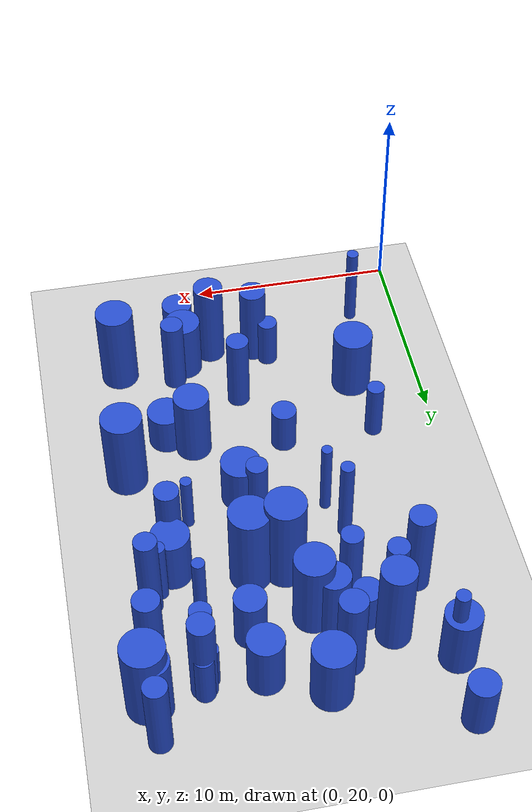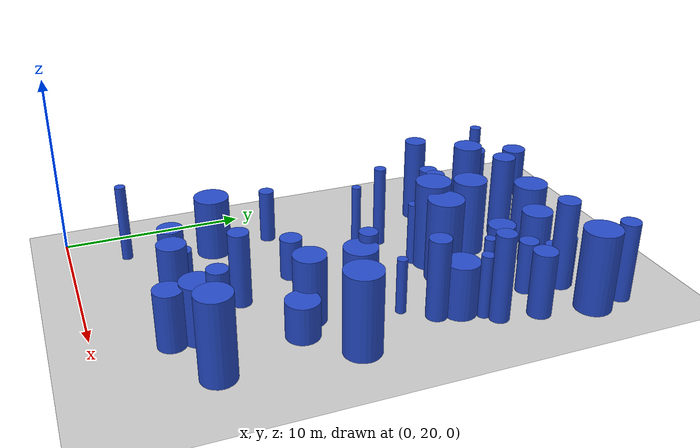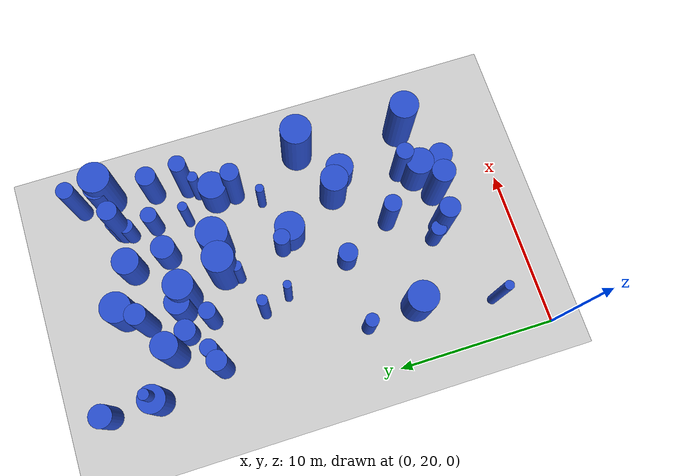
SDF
<sdf version="1.6">
 <world name="default">
  <model name="ground_plane">
   <static>1</static>
   <link name="link">
    <collision name="collision">
     <geometry><plane><normal>0 0 1</normal><size>100 100</size></plane></geometry>
     <surface><friction><ode><mu>100</mu><mu2>50</mu2></ode></friction></surface>
    </collision>
    <visual name="visual">
     <cast_shadows>0</cast_shadows>
     <geometry><plane><normal>0 0 1</normal><size>100 100</size></plane></geometry>
     <material>
      <script><uri>file://media/materials/scripts/gazebo.material</uri><name>Gazebo/Grey</name></script>
     </material>
    </visual>
   </link>
  </model>
  <model name="2">
   <static>0</static>
   <link name="link">
    <inertial>
     <mass>2</mass>
     <inertia><ixx>1.22837</ixx><ixy>0</ixy><ixz>0</ixz><iyy>1.22837</iyy><iyz>0</iyz><izz>0.232608</izz></inertia>
    </inertial>
    <collision name="collision">
     <geometry><cylinder><length>2.5831</length><radius>0.482294</radius></cylinder></geometry>
     <surface><contact><collide_without_contact>1</collide_without_contact></contact></surface>
    </collision>
    <visual name="visual">
     <geometry><cylinder><length>2.5831</length><radius>0.482294</radius></cylinder></geometry>
     <material>
      <script><uri>file://media/materials/scripts/gazebo.material</uri><name>Gazebo/Blue</name></script>
     </material>
    </visual>
    <gravity>0</gravity>
   </link>
   <pose>7.27465 25.3161 1.29155 0 -0 0</pose>
  </model>
  <model name="3">
   <static>0</static>
   <link name="link">
    <inertial>
     <mass>2</mass>
     <inertia><ixx>2.57983</ixx><ixy>0</ixy><ixz>0</ixz><iyy>2.57983</iyy><iyz>0</iyz><izz>0.566458</izz></inertia>
    </inertial>
    <collision name="collision">
     <geometry><cylinder><length>3.71209</length><radius>0.752634</radius></cylinder></geometry>
     <surface><contact><collide_without_contact>1</collide_without_contact></contact></surface>
    </collision>
    <visual name="visual">
     <geometry><cylinder><length>3.71209</length><radius>0.752634</radius></cylinder></geometry>
     <material>
      <script><uri>file://media/materials/scripts/gazebo.material</uri><name>Gazebo/Blue</name></script>
     </material>
    </visual>
    <gravity>0</gravity>
   </link>
   <pose>15.6778 44.6487 1.85604 0 -0 0</pose>
  </model>
  <model name="4">
   <static>0</static>
   <link name="link">
    <inertial>
     <mass>2</mass>
     <inertia>
      <ixx>2.76351</ixx>
      <ixy>0</ixy>
      <ixz>0</ixz>
      <iyy>2.76351</iyy>
      <iyz>0</iyz>
      <izz>0.0663908</izz>
     </inertia>
    </inertial>
    <collision name="collision">
     <geometry><cylinder><length>4.04745</length><radius>0.257664</radius></cylinder></geometry>
     <surface><contact><collide_without_contact>1</collide_without_contact></contact></surface>
    </collision>
    <visual name="visual">
     <geometry><cylinder><length>4.04745</length><radius>0.257664</radius></cylinder></geometry>
     <material>
      <script><uri>file://media/materials/scripts/gazebo.material</uri><name>Gazebo/Blue</name></script>
     </material>
    </visual>
    <gravity>0</gravity>
   </link>
   <pose>6.37285 35.2988 2.02373 0 -0 0</pose>
  </model>
  <model name="7">
   <static>0</static>
   <link name="link">
    <inertial>
     <mass>2</mass>
     <inertia><ixx>1.62705</ixx><ixy>0</ixy><ixz>0</ixz><iyy>1.62705</iyy><iyz>0</iyz><izz>0.555531</izz></inertia>
    </inertial>
    <collision name="collision">
     <geometry><cylinder><length>2.84529</length><radius>0.745339</radius></cylinder></geometry>
     <surface><contact><collide_without_contact>1</collide_without_contact></contact></surface>
    </collision>
    <visual name="visual">
     <geometry><cylinder><length>2.84529</length><radius>0.745339</radius></cylinder></geometry>
     <material>
      <script><uri>file://media/materials/scripts/gazebo.material</uri><name>Gazebo/Blue</name></script>
     </material>
    </visual>
    <gravity>0</gravity>
   </link>
   <pose>11.1182 41.7888 1.42265 0 -0 0</pose>
  </model>
  <model name="8">
   <static>0</static>
   <link name="link">
    <inertial>
     <mass>2</mass>
     <inertia><ixx>3.2449</ixx><ixy>0</ixy><ixz>0</ixz><iyy>3.2449</iyy><iyz>0</iyz><izz>0.0853454</izz></inertia>
    </inertial>
    <collision name="collision">
     <geometry><cylinder><length>4.3833</length><radius>0.292139</radius></cylinder></geometry>
     <surface><contact><collide_without_contact>1</collide_without_contact></contact></surface>
    </collision>
    <visual name="visual">
     <geometry><cylinder><length>4.3833</length><radius>0.292139</radius></cylinder></geometry>
     <material>
      <script><uri>file://media/materials/scripts/gazebo.material</uri><name>Gazebo/Blue</name></script>
     </material>
    </visual>
    <gravity>0</gravity>
   </link>
   <pose>2.40092 23.0819 2.19165 0 -0 0</pose>
  </model>
  <model name="13">
   <static>0</static>
   <link name="link">
    <inertial>
     <mass>2</mass>
     <inertia><ixx>4.00177</ixx><ixy>0</ixy><ixz>0</ixz><iyy>4.00177</iyy><iyz>0</iyz><izz>0.275408</izz></inertia>
    </inertial>
    <collision name="collision">
     <geometry><cylinder><length>4.81501</length><radius>0.524793</radius></cylinder></geometry>
     <surface><contact><collide_without_contact>1</collide_without_contact></contact></surface>
    </collision>
    <visual name="visual">
     <geometry><cylinder><length>4.81501</length><radius>0.524793</radius></cylinder></geometry>
     <material>
      <script><uri>file://media/materials/scripts/gazebo.material</uri><name>Gazebo/Blue</name></script>
     </material>
    </visual>
    <gravity>0</gravity>
   </link>
   <pose>15.2098 39.4486 2.40751 0 -0 0</pose>
  </model>
  <model name="18">
   <static>0</static>
   <link name="link">
    <inertial>
     <mass>2</mass>
     <inertia><ixx>1.88839</ixx><ixy>0</ixy><ixz>0</ixz><iyy>1.88839</iyy><iyz>0</iyz><izz>0.554769</izz></inertia>
    </inertial>
    <collision name="collision">
     <geometry><cylinder><length>3.10903</length><radius>0.744828</radius></cylinder></geometry>
     <surface><contact><collide_without_contact>1</collide_without_contact></contact></surface>
    </collision>
    <visual name="visual">
     <geometry><cylinder><length>3.10903</length><radius>0.744828</radius></cylinder></geometry>
     <material>
      <script><uri>file://media/materials/scripts/gazebo.material</uri><name>Gazebo/Blue</name></script>
     </material>
    </visual>
    <gravity>0</gravity>
   </link>
   <pose>11.6379 23.7222 1.55451 0 -0 0</pose>
  </model>
  <model name="20">
   <static>0</static>
   <link name="link">
    <inertial>
     <mass>2</mass>
     <inertia><ixx>1.55555</ixx><ixy>0</ixy><ixz>0</ixz><iyy>1.55555</iyy><iyz>0</iyz><izz>0.262073</izz></inertia>
    </inertial>
    <collision name="collision">
     <geometry><cylinder><length>2.92354</length><radius>0.51193</radius></cylinder></geometry>
     <surface><contact><collide_without_contact>1</collide_without_contact></contact></surface>
    </collision>
    <visual name="visual">
     <geometry><cylinder><length>2.92354</length><radius>0.51193</radius></cylinder></geometry>
     <material>
      <script><uri>file://media/materials/scripts/gazebo.material</uri><name>Gazebo/Blue</name></script>
     </material>
    </visual>
    <gravity>0</gravity>
   </link>
   <pose>13.3245 42.0815 1.46177 0 -0 0</pose>
  </model>
  <model name="25">
   <static>0</static>
   <link name="link">
    <inertial>
     <mass>2</mass>
     <inertia><ixx>3.26068</ixx><ixy>0</ixy><ixz>0</ixz><iyy>3.26068</iyy><iyz>0</iyz><izz>0.425175</izz></inertia>
    </inertial>
    <collision name="collision">
     <geometry><cylinder><length>4.27651</length><radius>0.652054</radius></cylinder></geometry>
     <surface><contact><collide_without_contact>1</collide_without_contact></contact></surface>
    </collision>
    <visual name="visual">
     <geometry><cylinder><length>4.27651</length><radius>0.652054</radius></cylinder></geometry>
     <material>
      <script><uri>file://media/materials/scripts/gazebo.material</uri><name>Gazebo/Blue</name></script>
     </material>
    </visual>
    <gravity>0</gravity>
   </link>
   <pose>7.91158 24.6829 2.13826 0 -0 0</pose>
  </model>
  <model name="33">
   <static>0</static>
   <link name="link">
    <inertial>
     <mass>2</mass>
     <inertia><ixx>3.67446</ixx><ixy>0</ixy><ixz>0</ixz><iyy>3.67446</iyy><iyz>0</iyz><izz>0.109586</izz></inertia>
    </inertial>
    <collision name="collision">
     <geometry><cylinder><length>4.66025</length><radius>0.331037</radius></cylinder></geometry>
     <surface><contact><collide_without_contact>1</collide_without_contact></contact></surface>
    </collision>
    <visual name="visual">
     <geometry><cylinder><length>4.66025</length><radius>0.331037</radius></cylinder></geometry>
     <material>
      <script><uri>file://media/materials/scripts/gazebo.material</uri><name>Gazebo/Blue</name></script>
     </material>
    </visual>
    <gravity>0</gravity>
   </link>
   <pose>5.79937 36.9559 2.33013 0 -0 0</pose>
  </model>
  <model name="45">
   <static>0</static>
   <link name="link">
    <inertial>
     <mass>2</mass>
     <inertia><ixx>4.31175</ixx><ixy>0</ixy><ixz>0</ixz><iyy>4.31175</iyy><iyz>0</iyz><izz>0.358965</izz></inertia>
    </inertial>
    <collision name="collision">
     <geometry><cylinder><length>4.97932</length><radius>0.599137</radius></cylinder></geometry>
     <surface><contact><collide_without_contact>1</collide_without_contact></contact></surface>
    </collision>
    <visual name="visual">
     <geometry><cylinder><length>4.97932</length><radius>0.599137</radius></cylinder></geometry>
     <material>
      <script><uri>file://media/materials/scripts/gazebo.material</uri><name>Gazebo/Blue</name></script>
     </material>
    </visual>
    <gravity>0</gravity>
   </link>
   <pose>13.5394 44.0868 2.48966 0 -0 0</pose>
  </model>
  <model name="50">
   <static>0</static>
   <link name="link">
    <inertial>
     <mass>2</mass>
     <inertia><ixx>4.08319</ixx><ixy>0</ixy><ixz>0</ixz><iyy>4.08319</iyy><iyz>0</iyz><izz>0.947286</izz></inertia>
    </inertial>
    <collision name="collision">
     <geometry><cylinder><length>4.65374</length><radius>0.973286</radius></cylinder></geometry>
     <surface><contact><collide_without_contact>1</collide_without_contact></contact></surface>
    </collision>
    <visual name="visual">
     <geometry><cylinder><length>4.65374</length><radius>0.973286</radius></cylinder></geometry>
     <material>
      <script><uri>file://media/materials/scripts/gazebo.material</uri><name>Gazebo/Blue</name></script>
     </material>
    </visual>
    <gravity>0</gravity>
   </link>
   <pose>10.5505 38.6327 2.32687 0 -0 0</pose>
  </model>
  <model name="51">
   <static>0</static>
   <link name="link">
    <inertial>
     <mass>2</mass>
     <inertia><ixx>1.96723</ixx><ixy>0</ixy><ixz>0</ixz><iyy>1.96723</iyy><iyz>0</iyz><izz>0.705018</izz></inertia>
    </inertial>
    <collision name="collision">
     <geometry><cylinder><length>3.11261</length><radius>0.839654</radius></cylinder></geometry>
     <surface><contact><collide_without_contact>1</collide_without_contact></contact></surface>
    </collision>
    <visual name="visual">
     <geometry><cylinder><length>3.11261</length><radius>0.839654</radius></cylinder></geometry>
     <material>
      <script><uri>file://media/materials/scripts/gazebo.material</uri><name>Gazebo/Blue</name></script>
     </material>
    </visual>
    <gravity>0</gravity>
   </link>
   <pose>10.8716 44.1182 1.5563 0 -0 0</pose>
  </model>
  <model name="54">
   <static>0</static>
   <link name="link">
    <inertial>
     <mass>2</mass>
     <inertia><ixx>2.11658</ixx><ixy>0</ixy><ixz>0</ixz><iyy>2.11658</iyy><iyz>0</iyz><izz>0.764272</izz></inertia>
    </inertial>
    <collision name="collision">
     <geometry><cylinder><length>3.22594</length><radius>0.874226</radius></cylinder></geometry>
     <surface><contact><collide_without_contact>1</collide_without_contact></contact></surface>
    </collision>
    <visual name="visual">
     <geometry><cylinder><length>3.22594</length><radius>0.874226</radius></cylinder></geometry>
     <material>
      <script><uri>file://media/materials/scripts/gazebo.material</uri><name>Gazebo/Blue</name></script>
     </material>
    </visual>
    <gravity>0</gravity>
   </link>
   <pose>11.5601 25.1175 1.61297 0 -0 0</pose>
  </model>
  <model name="57">
   <static>0</static>
   <link name="link">
    <inertial>
     <mass>2</mass>
     <inertia>
      <ixx>1.59473</ixx>
      <ixy>0</ixy>
      <ixz>0</ixz>
      <iyy>1.59473</iyy>
      <iyz>0</iyz>
      <izz>0.0761013</izz>
     </inertia>
    </inertial>
    <collision name="collision">
     <geometry><cylinder><length>3.05615</length><radius>0.275865</radius></cylinder></geometry>
     <surface><contact><collide_without_contact>1</collide_without_contact></contact></surface>
    </collision>
    <visual name="visual">
     <geometry><cylinder><length>3.05615</length><radius>0.275865</radius></cylinder></geometry>
     <material>
      <script><uri>file://media/materials/scripts/gazebo.material</uri><name>Gazebo/Blue</name></script>
     </material>
    </visual>
    <gravity>0</gravity>
   </link>
   <pose>12.885 35.111 1.52808 0 -0 0</pose>
  </model>
  <model name="73">
   <static>0</static>
   <link name="link">
    <inertial>
     <mass>2</mass>
     <inertia><ixx>1.07986</ixx><ixy>0</ixy><ixz>0</ixz><iyy>1.07986</iyy><iyz>0</iyz><izz>0.370104</izz></inertia>
    </inertial>
    <collision name="collision">
     <geometry><cylinder><length>2.31708</length><radius>0.608361</radius></cylinder></geometry>
     <surface><contact><collide_without_contact>1</collide_without_contact></contact></surface>
    </collision>
    <visual name="visual">
     <geometry><cylinder><length>2.31708</length><radius>0.608361</radius></cylinder></geometry>
     <material>
      <script><uri>file://media/materials/scripts/gazebo.material</uri><name>Gazebo/Blue</name></script>
     </material>
    </visual>
    <gravity>0</gravity>
   </link>
   <pose>7.54323 31.0733 1.15854 0 -0 0</pose>
  </model>
  <model name="78">
   <static>0</static>
   <link name="link">
    <inertial>
     <mass>2</mass>
     <inertia><ixx>4.09063</ixx><ixy>0</ixy><ixz>0</ixz><iyy>4.09063</iyy><iyz>0</iyz><izz>0.371531</izz></inertia>
    </inertial>
    <collision name="collision">
     <geometry><cylinder><length>4.84037</length><radius>0.609533</radius></cylinder></geometry>
     <surface><contact><collide_without_contact>1</collide_without_contact></contact></surface>
    </collision>
    <visual name="visual">
     <geometry><cylinder><length>4.84037</length><radius>0.609533</radius></cylinder></geometry>
     <material>
      <script><uri>file://media/materials/scripts/gazebo.material</uri><name>Gazebo/Blue</name></script>
     </material>
    </visual>
    <gravity>0</gravity>
   </link>
   <pose>3.26079 40.3524 2.42019 0 -0 0</pose>
  </model>
  <model name="84">
   <static>0</static>
   <link name="link">
    <inertial>
     <mass>2</mass>
     <inertia><ixx>3.5158</ixx><ixy>0</ixy><ixz>0</ixz><iyy>3.5158</iyy><iyz>0</iyz><izz>0.852529</izz></inertia>
    </inertial>
    <collision name="collision">
     <geometry><cylinder><length>4.30549</length><radius>0.923325</radius></cylinder></geometry>
     <surface><contact><collide_without_contact>1</collide_without_contact></contact></surface>
    </collision>
    <visual name="visual">
     <geometry><cylinder><length>4.30549</length><radius>0.923325</radius></cylinder></geometry>
     <material>
      <script><uri>file://media/materials/scripts/gazebo.material</uri><name>Gazebo/Blue</name></script>
     </material>
    </visual>
    <gravity>0</gravity>
   </link>
   <pose>8.22938 41.3509 2.15274 0 -0 0</pose>
  </model>
  <model name="92">
   <static>0</static>
   <link name="link">
    <inertial>
     <mass>2</mass>
     <inertia><ixx>2.42741</ixx><ixy>0</ixy><ixz>0</ixz><iyy>2.42741</iyy><iyz>0</iyz><izz>0.934347</izz></inertia>
    </inertial>
    <collision name="collision">
     <geometry><cylinder><length>3.4295</length><radius>0.966616</radius></cylinder></geometry>
     <surface><contact><collide_without_contact>1</collide_without_contact></contact></surface>
    </collision>
    <visual name="visual">
     <geometry><cylinder><length>3.4295</length><radius>0.966616</radius></cylinder></geometry>
     <material>
      <script><uri>file://media/materials/scripts/gazebo.material</uri><name>Gazebo/Blue</name></script>
     </material>
    </visual>
    <gravity>0</gravity>
   </link>
   <pose>3.42909 27.821 1.71475 0 -0 0</pose>
  </model>
  <model name="97">
   <static>0</static>
   <link name="link">
    <inertial>
     <mass>2</mass>
     <inertia><ixx>4.57511</ixx><ixy>0</ixy><ixz>0</ixz><iyy>4.57511</iyy><iyz>0</iyz><izz>0.91378</izz></inertia>
    </inertial>
    <collision name="collision">
     <geometry><cylinder><length>4.97085</length><radius>0.955918</radius></cylinder></geometry>
     <surface><contact><collide_without_contact>1</collide_without_contact></contact></surface>
    </collision>
    <visual name="visual">
     <geometry><cylinder><length>4.97085</length><radius>0.955918</radius></cylinder></geometry>
     <material>
      <script><uri>file://media/materials/scripts/gazebo.material</uri><name>Gazebo/Blue</name></script>
     </material>
    </visual>
    <gravity>0</gravity>
   </link>
   <pose>8.95716 38.6813 2.48542 0 -0 0</pose>
  </model>
  <model name="118">
   <static>0</static>
   <link name="link">
    <inertial>
     <mass>2</mass>
     <inertia><ixx>2.33748</ixx><ixy>0</ixy><ixz>0</ixz><iyy>2.33748</iyy><iyz>0</iyz><izz>0.591398</izz></inertia>
    </inertial>
    <collision name="collision">
     <geometry><cylinder><length>3.5001</length><radius>0.769024</radius></cylinder></geometry>
     <surface><contact><collide_without_contact>1</collide_without_contact></contact></surface>
    </collision>
    <visual name="visual">
     <geometry><cylinder><length>3.5001</length><radius>0.769024</radius></cylinder></geometry>
     <material>
      <script><uri>file://media/materials/scripts/gazebo.material</uri><name>Gazebo/Blue</name></script>
     </material>
    </visual>
    <gravity>0</gravity>
   </link>
   <pose>7.44101 41.7735 1.75005 0 -0 0</pose>
  </model>
  <model name="119">
   <static>0</static>
   <link name="link">
    <inertial>
     <mass>2</mass>
     <inertia>
      <ixx>1.92856</ixx>
      <ixy>0</ixy>
      <ixz>0</ixz>
      <iyy>1.92856</iyy>
      <iyz>0</iyz>
      <izz>0.0917281</izz>
     </inertia>
    </inertial>
    <collision name="collision">
     <geometry><cylinder><length>3.36098</length><radius>0.302867</radius></cylinder></geometry>
     <surface><contact><collide_without_contact>1</collide_without_contact></contact></surface>
    </collision>
    <visual name="visual">
     <geometry><cylinder><length>3.36098</length><radius>0.302867</radius></cylinder></geometry>
     <material>
      <script><uri>file://media/materials/scripts/gazebo.material</uri><name>Gazebo/Blue</name></script>
     </material>
    </visual>
    <gravity>0</gravity>
   </link>
   <pose>13.0608 39.9307 1.68049 0 -0 0</pose>
  </model>
  <model name="139">
   <static>0</static>
   <link name="link">
    <inertial>
     <mass>2</mass>
     <inertia><ixx>4.20555</ixx><ixy>0</ixy><ixz>0</ixz><iyy>4.20555</iyy><iyz>0</iyz><izz>0.653615</izz></inertia>
    </inertial>
    <collision name="collision">
     <geometry><cylinder><length>4.82415</length><radius>0.808465</radius></cylinder></geometry>
     <surface><contact><collide_without_contact>1</collide_without_contact></contact></surface>
    </collision>
    <visual name="visual">
     <geometry><cylinder><length>4.82415</length><radius>0.808465</radius></cylinder></geometry>
     <material>
      <script><uri>file://media/materials/scripts/gazebo.material</uri><name>Gazebo/Blue</name></script>
     </material>
    </visual>
    <gravity>0</gravity>
   </link>
   <pose>4.9452 42.9406 2.41208 0 -0 0</pose>
  </model>
  <model name="144">
   <static>0</static>
   <link name="link">
    <inertial>
     <mass>2</mass>
     <inertia><ixx>2.65699</ixx><ixy>0</ixy><ixz>0</ixz><iyy>2.65699</iyy><iyz>0</iyz><izz>0.740727</izz></inertia>
    </inertial>
    <collision name="collision">
     <geometry><cylinder><length>3.70402</length><radius>0.860655</radius></cylinder></geometry>
     <surface><contact><collide_without_contact>1</collide_without_contact></contact></surface>
    </collision>
    <visual name="visual">
     <geometry><cylinder><length>3.70402</length><radius>0.860655</radius></cylinder></geometry>
     <material>
      <script><uri>file://media/materials/scripts/gazebo.material</uri><name>Gazebo/Blue</name></script>
     </material>
    </visual>
    <gravity>0</gravity>
   </link>
   <pose>11.9288 30.6022 1.85201 0 -0 0</pose>
  </model>
  <model name="146">
   <static>0</static>
   <link name="link">
    <inertial>
     <mass>2</mass>
     <inertia><ixx>1.86074</ixx><ixy>0</ixy><ixz>0</ixz><iyy>1.86074</iyy><iyz>0</iyz><izz>0.802678</izz></inertia>
    </inertial>
    <collision name="collision">
     <geometry><cylinder><length>2.95913</length><radius>0.895923</radius></cylinder></geometry>
     <surface><contact><collide_without_contact>1</collide_without_contact></contact></surface>
    </collision>
    <visual name="visual">
     <geometry><cylinder><length>2.95913</length><radius>0.895923</radius></cylinder></geometry>
     <material>
      <script><uri>file://media/materials/scripts/gazebo.material</uri><name>Gazebo/Blue</name></script>
     </material>
    </visual>
    <gravity>0</gravity>
   </link>
   <pose>14.0103 37.8708 1.47956 0 -0 0</pose>
  </model>
  <model name="151">
   <static>0</static>
   <link name="link">
    <inertial>
     <mass>2</mass>
     <inertia><ixx>2.20462</ixx><ixy>0</ixy><ixz>0</ixz><iyy>2.20462</iyy><iyz>0</iyz><izz>0.718294</izz></inertia>
    </inertial>
    <collision name="collision">
     <geometry><cylinder><length>3.32759</length><radius>0.847522</radius></cylinder></geometry>
     <surface><contact><collide_without_contact>1</collide_without_contact></contact></surface>
    </collision>
    <visual name="visual">
     <geometry><cylinder><length>3.32759</length><radius>0.847522</radius></cylinder></geometry>
     <material>
      <script><uri>file://media/materials/scripts/gazebo.material</uri><name>Gazebo/Blue</name></script>
     </material>
    </visual>
    <gravity>0</gravity>
   </link>
   <pose>2.48471 44.6349 1.6638 0 -0 0</pose>
  </model>
  <model name="155">
   <static>0</static>
   <link name="link">
    <inertial>
     <mass>2</mass>
     <inertia><ixx>2.83162</ixx><ixy>0</ixy><ixz>0</ixz><iyy>2.83162</iyy><iyz>0</iyz><izz>0.267931</izz></inertia>
    </inertial>
    <collision name="collision">
     <geometry><cylinder><length>4.02317</length><radius>0.517621</radius></cylinder></geometry>
     <surface><contact><collide_without_contact>1</collide_without_contact></contact></surface>
    </collision>
    <visual name="visual">
     <geometry><cylinder><length>4.02317</length><radius>0.517621</radius></cylinder></geometry>
     <material>
      <script><uri>file://media/materials/scripts/gazebo.material</uri><name>Gazebo/Blue</name></script>
     </material>
    </visual>
    <gravity>0</gravity>
   </link>
   <pose>6.3046 40.1762 2.01159 0 -0 0</pose>
  </model>
  <model name="156">
   <static>0</static>
   <link name="link">
    <inertial>
     <mass>2</mass>
     <inertia><ixx>2.84976</ixx><ixy>0</ixy><ixz>0</ixz><iyy>2.84976</iyy><iyz>0</iyz><izz>0.29992</izz></inertia>
    </inertial>
    <collision name="collision">
     <geometry><cylinder><length>4.02477</length><radius>0.54765</radius></cylinder></geometry>
     <surface><contact><collide_without_contact>1</collide_without_contact></contact></surface>
    </collision>
    <visual name="visual">
     <geometry><cylinder><length>4.02477</length><radius>0.54765</radius></cylinder></geometry>
     <material>
      <script><uri>file://media/materials/scripts/gazebo.material</uri><name>Gazebo/Blue</name></script>
     </material>
    </visual>
    <gravity>0</gravity>
   </link>
   <pose>12.1792 25.9984 2.01239 0 -0 0</pose>
  </model>
  <model name="158">
   <static>0</static>
   <link name="link">
    <inertial>
     <mass>2</mass>
     <inertia><ixx>3.81418</ixx><ixy>0</ixy><ixz>0</ixz><iyy>3.81418</iyy><iyz>0</iyz><izz>0.83863</izz></inertia>
    </inertial>
    <collision name="collision">
     <geometry><cylinder><length>4.51323</length><radius>0.915767</radius></cylinder></geometry>
     <surface><contact><collide_without_contact>1</collide_without_contact></contact></surface>
    </collision>
    <visual name="visual">
     <geometry><cylinder><length>4.51323</length><radius>0.915767</radius></cylinder></geometry>
     <material>
      <script><uri>file://media/materials/scripts/gazebo.material</uri><name>Gazebo/Blue</name></script>
     </material>
    </visual>
    <gravity>0</gravity>
   </link>
   <pose>14.8925 25.1672 2.25661 0 -0 0</pose>
  </model>
  <model name="162">
   <static>0</static>
   <link name="link">
    <inertial>
     <mass>2</mass>
     <inertia><ixx>1.635</ixx><ixy>0</ixy><ixz>0</ixz><iyy>1.635</iyy><iyz>0</iyz><izz>0.179993</izz></inertia>
    </inertial>
    <collision name="collision">
     <geometry><cylinder><length>3.04468</length><radius>0.424255</radius></cylinder></geometry>
     <surface><contact><collide_without_contact>1</collide_without_contact></contact></surface>
    </collision>
    <visual name="visual">
     <geometry><cylinder><length>3.04468</length><radius>0.424255</radius></cylinder></geometry>
     <material>
      <script><uri>file://media/materials/scripts/gazebo.material</uri><name>Gazebo/Blue</name></script>
     </material>
    </visual>
    <gravity>0</gravity>
   </link>
   <pose>3.04036 31.1089 1.52234 0 -0 0</pose>
  </model>
  <model name="164">
   <static>0</static>
   <link name="link">
    <inertial>
     <mass>2</mass>
     <inertia><ixx>3.75948</ixx><ixy>0</ixy><ixz>0</ixz><iyy>3.75948</iyy><iyz>0</iyz><izz>0.530603</izz></inertia>
    </inertial>
    <collision name="collision">
     <geometry><cylinder><length>4.57876</length><radius>0.728425</radius></cylinder></geometry>
     <surface><contact><collide_without_contact>1</collide_without_contact></contact></surface>
    </collision>
    <visual name="visual">
     <geometry><cylinder><length>4.57876</length><radius>0.728425</radius></cylinder></geometry>
     <material>
      <script><uri>file://media/materials/scripts/gazebo.material</uri><name>Gazebo/Blue</name></script>
     </material>
    </visual>
    <gravity>0</gravity>
   </link>
   <pose>10.0972 24.3275 2.28938 0 -0 0</pose>
  </model>
  <model name="170">
   <static>0</static>
   <link name="link">
    <inertial>
     <mass>2</mass>
     <inertia><ixx>2.04502</ixx><ixy>0</ixy><ixz>0</ixz><iyy>2.04502</iyy><iyz>0</iyz><izz>0.272594</izz></inertia>
    </inertial>
    <collision name="collision">
     <geometry><cylinder><length>3.38413</length><radius>0.522105</radius></cylinder></geometry>
     <surface><contact><collide_without_contact>1</collide_without_contact></contact></surface>
    </collision>
    <visual name="visual">
     <geometry><cylinder><length>3.38413</length><radius>0.522105</radius></cylinder></geometry>
     <material>
      <script><uri>file://media/materials/scripts/gazebo.material</uri><name>Gazebo/Blue</name></script>
     </material>
    </visual>
    <gravity>0</gravity>
   </link>
   <pose>4.32502 40.7291 1.69206 0 -0 0</pose>
  </model>
  <model name="176">
   <static>0</static>
   <link name="link">
    <inertial>
     <mass>2</mass>
     <inertia><ixx>3.79879</ixx><ixy>0</ixy><ixz>0</ixz><iyy>3.79879</iyy><iyz>0</iyz><izz>0.971919</izz></inertia>
    </inertial>
    <collision name="collision">
     <geometry><cylinder><length>4.45836</length><radius>0.98586</radius></cylinder></geometry>
     <surface><contact><collide_without_contact>1</collide_without_contact></contact></surface>
    </collision>
    <visual name="visual">
     <geometry><cylinder><length>4.45836</length><radius>0.98586</radius></cylinder></geometry>
     <material>
      <script><uri>file://media/materials/scripts/gazebo.material</uri><name>Gazebo/Blue</name></script>
     </material>
    </visual>
    <gravity>0</gravity>
   </link>
   <pose>15.3652 31.9953 2.22918 0 -0 0</pose>
  </model>
  <model name="182">
   <static>0</static>
   <link name="link">
    <inertial>
     <mass>2</mass>
     <inertia><ixx>3.45326</ixx><ixy>0</ixy><ixz>0</ixz><iyy>3.45326</iyy><iyz>0</iyz><izz>0.329083</izz></inertia>
    </inertial>
    <collision name="collision">
     <geometry><cylinder><length>4.44211</length><radius>0.573658</radius></cylinder></geometry>
     <surface><contact><collide_without_contact>1</collide_without_contact></contact></surface>
    </collision>
    <visual name="visual">
     <geometry><cylinder><length>4.44211</length><radius>0.573658</radius></cylinder></geometry>
     <material>
      <script><uri>file://media/materials/scripts/gazebo.material</uri><name>Gazebo/Blue</name></script>
     </material>
    </visual>
    <gravity>0</gravity>
   </link>
   <pose>13.9124 36.611 2.22105 0 -0 0</pose>
  </model>
  <model name="187">
   <static>0</static>
   <link name="link">
    <inertial>
     <mass>2</mass>
     <inertia><ixx>1.61433</ixx><ixy>0</ixy><ixz>0</ixz><iyy>1.61433</iyy><iyz>0</iyz><izz>0.267255</izz></inertia>
    </inertial>
    <collision name="collision">
     <geometry><cylinder><length>2.98064</length><radius>0.516967</radius></cylinder></geometry>
     <surface><contact><collide_without_contact>1</collide_without_contact></contact></surface>
    </collision>
    <visual name="visual">
     <geometry><cylinder><length>2.98064</length><radius>0.516967</radius></cylinder></geometry>
     <material>
      <script><uri>file://media/materials/scripts/gazebo.material</uri><name>Gazebo/Blue</name></script>
     </material>
    </visual>
    <gravity>0</gravity>
   </link>
   <pose>9.52698 34.7119 1.49032 0 -0 0</pose>
  </model>
  <model name="188">
   <static>0</static>
   <link name="link">
    <inertial>
     <mass>2</mass>
     <inertia><ixx>2.39885</ixx><ixy>0</ixy><ixz>0</ixz><iyy>2.39885</iyy><iyz>0</iyz><izz>0.903742</izz></inertia>
    </inertial>
    <collision name="collision">
     <geometry><cylinder><length>3.41787</length><radius>0.950653</radius></cylinder></geometry>
     <surface><contact><collide_without_contact>1</collide_without_contact></contact></surface>
    </collision>
    <visual name="visual">
     <geometry><cylinder><length>3.41787</length><radius>0.950653</radius></cylinder></geometry>
     <material>
      <script><uri>file://media/materials/scripts/gazebo.material</uri><name>Gazebo/Blue</name></script>
     </material>
    </visual>
    <gravity>0</gravity>
   </link>
   <pose>8.23711 45.3141 1.70894 0 -0 0</pose>
  </model>
  <model name="190">
   <static>0</static>
   <link name="link">
    <inertial>
     <mass>2</mass>
     <inertia><ixx>1.03917</ixx><ixy>0</ixy><ixz>0</ixz><iyy>1.03917</iyy><iyz>0</iyz><izz>0.215799</izz></inertia>
    </inertial>
    <collision name="collision">
     <geometry><cylinder><length>2.36382</length><radius>0.464542</radius></cylinder></geometry>
     <surface><contact><collide_without_contact>1</collide_without_contact></contact></surface>
    </collision>
    <visual name="visual">
     <geometry><cylinder><length>2.36382</length><radius>0.464542</radius></cylinder></geometry>
     <material>
      <script><uri>file://media/materials/scripts/gazebo.material</uri><name>Gazebo/Blue</name></script>
     </material>
    </visual>
    <gravity>0</gravity>
   </link>
   <pose>13.2619 43.6858 1.18191 0 -0 0</pose>
  </model>
  <model name="195">
   <static>0</static>
   <link name="link">
    <inertial>
     <mass>2</mass>
     <inertia><ixx>3.85048</ixx><ixy>0</ixy><ixz>0</ixz><iyy>3.85048</iyy><iyz>0</iyz><izz>0.964794</izz></inertia>
    </inertial>
    <collision name="collision">
     <geometry><cylinder><length>4.49539</length><radius>0.982239</radius></cylinder></geometry>
     <surface><contact><collide_without_contact>1</collide_without_contact></contact></surface>
    </collision>
    <visual name="visual">
     <geometry><cylinder><length>4.49539</length><radius>0.982239</radius></cylinder></geometry>
     <material>
      <script><uri>file://media/materials/scripts/gazebo.material</uri><name>Gazebo/Blue</name></script>
     </material>
    </visual>
    <gravity>0</gravity>
   </link>
   <pose>16.0033 44.4438 2.24769 0 -0 0</pose>
  </model>
  <model name="198">
   <static>0</static>
   <link name="link">
    <inertial>
     <mass>2</mass>
     <inertia><ixx>1.39907</ixx><ixy>0</ixy><ixz>0</ixz><iyy>1.39907</iyy><iyz>0</iyz><izz>0.223634</izz></inertia>
    </inertial>
    <collision name="collision">
     <geometry><cylinder><length>2.77912</length><radius>0.472899</radius></cylinder></geometry>
     <surface><contact><collide_without_contact>1</collide_without_contact></contact></surface>
    </collision>
    <visual name="visual">
     <geometry><cylinder><length>2.77912</length><radius>0.472899</radius></cylinder></geometry>
     <material>
      <script><uri>file://media/materials/scripts/gazebo.material</uri><name>Gazebo/Blue</name></script>
     </material>
    </visual>
    <gravity>0</gravity>
   </link>
   <pose>13.5424 44.3259 1.38956 0 -0 0</pose>
  </model>
  <model name="199">
   <static>0</static>
   <link name="link">
    <inertial>
     <mass>2</mass>
     <inertia><ixx>3.99655</ixx><ixy>0</ixy><ixz>0</ixz><iyy>3.99655</iyy><iyz>0</iyz><izz>0.10954</izz></inertia>
    </inertial>
    <collision name="collision">
     <geometry><cylinder><length>4.8632</length><radius>0.330968</radius></cylinder></geometry>
     <surface><contact><collide_without_contact>1</collide_without_contact></contact></surface>
    </collision>
    <visual name="visual">
     <geometry><cylinder><length>4.8632</length><radius>0.330968</radius></cylinder></geometry>
     <material>
      <script><uri>file://media/materials/scripts/gazebo.material</uri><name>Gazebo/Blue</name></script>
     </material>
    </visual>
    <gravity>0</gravity>
   </link>
   <pose>2.6743 44.7081 2.4316 0 -0 0</pose>
  </model>
  <model name="200">
   <static>0</static>
   <link name="link">
    <inertial>
     <mass>2</mass>
     <inertia><ixx>2.3421</ixx><ixy>0</ixy><ixz>0</ixz><iyy>2.3421</iyy><iyz>0</iyz><izz>0.392913</izz></inertia>
    </inertial>
    <collision name="collision">
     <geometry><cylinder><length>3.58802</length><radius>0.626828</radius></cylinder></geometry>
     <surface><contact><collide_without_contact>1</collide_without_contact></contact></surface>
    </collision>
    <visual name="visual">
     <geometry><cylinder><length>3.58802</length><radius>0.626828</radius></cylinder></geometry>
     <material>
      <script><uri>file://media/materials/scripts/gazebo.material</uri><name>Gazebo/Blue</name></script>
     </material>
    </visual>
    <gravity>0</gravity>
   </link>
   <pose>15.5305 41.5624 1.79401 0 -0 0</pose>
  </model>
  <model name="211">
   <static>0</static>
   <link name="link">
    <inertial>
     <mass>2</mass>
     <inertia><ixx>2.15898</ixx><ixy>0</ixy><ixz>0</ixz><iyy>2.15898</iyy><iyz>0</iyz><izz>0.107893</izz></inertia>
    </inertial>
    <collision name="collision">
     <geometry><cylinder><length>3.5539</length><radius>0.328471</radius></cylinder></geometry>
     <surface><contact><collide_without_contact>1</collide_without_contact></contact></surface>
    </collision>
    <visual name="visual">
     <geometry><cylinder><length>3.5539</length><radius>0.328471</radius></cylinder></geometry>
     <material>
      <script><uri>file://media/materials/scripts/gazebo.material</uri><name>Gazebo/Blue</name></script>
     </material>
    </visual>
    <gravity>0</gravity>
   </link>
   <pose>8.47169 37.8363 1.77695 0 -0 0</pose>
  </model>
  <model name="216">
   <static>0</static>
   <link name="link">
    <inertial>
     <mass>2</mass>
     <inertia><ixx>1.51501</ixx><ixy>0</ixy><ixz>0</ixz><iyy>1.51501</iyy><iyz>0</iyz><izz>0.904808</izz></inertia>
    </inertial>
    <collision name="collision">
     <geometry><cylinder><length>2.525</length><radius>0.951214</radius></cylinder></geometry>
     <surface><contact><collide_without_contact>1</collide_without_contact></contact></surface>
    </collision>
    <visual name="visual">
     <geometry><cylinder><length>2.525</length><radius>0.951214</radius></cylinder></geometry>
     <material>
      <script><uri>file://media/materials/scripts/gazebo.material</uri><name>Gazebo/Blue</name></script>
     </material>
    </visual>
    <gravity>0</gravity>
   </link>
   <pose>10.1743 34.0222 1.2625 0 -0 0</pose>
  </model>
  <model name="223">
   <static>0</static>
   <link name="link">
    <inertial>
     <mass>2</mass>
     <inertia><ixx>4.06294</ixx><ixy>0</ixy><ixz>0</ixz><iyy>4.06294</iyy><iyz>0</iyz><izz>0.409572</izz></inertia>
    </inertial>
    <collision name="collision">
     <geometry><cylinder><length>4.81133</length><radius>0.639978</radius></cylinder></geometry>
     <surface><contact><collide_without_contact>1</collide_without_contact></contact></surface>
    </collision>
    <visual name="visual">
     <geometry><cylinder><length>4.81133</length><radius>0.639978</radius></cylinder></geometry>
     <material>
      <script><uri>file://media/materials/scripts/gazebo.material</uri><name>Gazebo/Blue</name></script>
     </material>
    </visual>
    <gravity>0</gravity>
   </link>
   <pose>7.15701 44.0655 2.40566 0 -0 0</pose>
  </model>
  <model name="231">
   <static>0</static>
   <link name="link">
    <inertial>
     <mass>2</mass>
     <inertia><ixx>2.96091</ixx><ixy>0</ixy><ixz>0</ixz><iyy>2.96091</iyy><iyz>0</iyz><izz>0.303057</izz></inertia>
    </inertial>
    <collision name="collision">
     <geometry><cylinder><length>4.10564</length><radius>0.550506</radius></cylinder></geometry>
     <surface><contact><collide_without_contact>1</collide_without_contact></contact></surface>
    </collision>
    <visual name="visual">
     <geometry><cylinder><length>4.10564</length><radius>0.550506</radius></cylinder></geometry>
     <material>
      <script><uri>file://media/materials/scripts/gazebo.material</uri><name>Gazebo/Blue</name></script>
     </material>
    </visual>
    <gravity>0</gravity>
   </link>
   <pose>9.21298 27.8071 2.05282 0 -0 0</pose>
  </model>
  <model name="232">
   <static>0</static>
   <link name="link">
    <inertial>
     <mass>2</mass>
     <inertia><ixx>1.0838</ixx><ixy>0</ixy><ixz>0</ixz><iyy>1.0838</iyy><iyz>0</iyz><izz>0.788768</izz></inertia>
    </inertial>
    <collision name="collision">
     <geometry><cylinder><length>2.03384</length><radius>0.888126</radius></cylinder></geometry>
     <surface><contact><collide_without_contact>1</collide_without_contact></contact></surface>
    </collision>
    <visual name="visual">
     <geometry><cylinder><length>2.03384</length><radius>0.888126</radius></cylinder></geometry>
     <material>
      <script><uri>file://media/materials/scripts/gazebo.material</uri><name>Gazebo/Blue</name></script>
     </material>
    </visual>
    <gravity>0</gravity>
   </link>
   <pose>13.1248 29.806 1.01692 0 -0 0</pose>
  </model>
  <model name="238">
   <static>0</static>
   <link name="link">
    <inertial>
     <mass>2</mass>
     <inertia><ixx>1.67716</ixx><ixy>0</ixy><ixz>0</ixz><iyy>1.67716</iyy><iyz>0</iyz><izz>0.503337</izz></inertia>
    </inertial>
    <collision name="collision">
     <geometry><cylinder><length>2.92454</length><radius>0.709462</radius></cylinder></geometry>
     <surface><contact><collide_without_contact>1</collide_without_contact></contact></surface>
    </collision>
    <visual name="visual">
     <geometry><cylinder><length>2.92454</length><radius>0.709462</radius></cylinder></geometry>
     <material>
      <script><uri>file://media/materials/scripts/gazebo.material</uri><name>Gazebo/Blue</name></script>
     </material>
    </visual>
    <gravity>0</gravity>
   </link>
   <pose>2.46278 47.7417 1.46227 0 -0 0</pose>
  </model>
  <model name="241">
   <static>0</static>
   <link name="link">
    <inertial>
     <mass>2</mass>
     <inertia><ixx>2.07604</ixx><ixy>0</ixy><ixz>0</ixz><iyy>2.07604</iyy><iyz>0</iyz><izz>0.114754</izz></inertia>
    </inertial>
    <collision name="collision">
     <geometry><cylinder><length>3.48022</length><radius>0.338753</radius></cylinder></geometry>
     <surface><contact><collide_without_contact>1</collide_without_contact></contact></surface>
    </collision>
    <visual name="visual">
     <geometry><cylinder><length>3.48022</length><radius>0.338753</radius></cylinder></geometry>
     <material>
      <script><uri>file://media/materials/scripts/gazebo.material</uri><name>Gazebo/Blue</name></script>
     </material>
    </visual>
    <gravity>0</gravity>
   </link>
   <pose>14.6877 38.8595 1.74011 0 -0 0</pose>
  </model>
  <model name="246">
   <static>0</static>
   <link name="link">
    <inertial>
     <mass>2</mass>
     <inertia><ixx>1.04546</ixx><ixy>0</ixy><ixz>0</ixz><iyy>1.04546</iyy><iyz>0</iyz><izz>0.451553</izz></inertia>
    </inertial>
    <collision name="collision">
     <geometry><cylinder><length>2.21768</length><radius>0.671977</radius></cylinder></geometry>
     <surface><contact><collide_without_contact>1</collide_without_contact></contact></surface>
    </collision>
    <visual name="visual">
     <geometry><cylinder><length>2.21768</length><radius>0.671977</radius></cylinder></geometry>
     <material>
      <script><uri>file://media/materials/scripts/gazebo.material</uri><name>Gazebo/Blue</name></script>
     </material>
    </visual>
    <gravity>0</gravity>
   </link>
   <pose>5.94914 41.8862 1.10884 0 -0 0</pose>
  </model>
  <model name="248">
   <static>0</static>
   <link name="link">
    <inertial>
     <mass>2</mass>
     <inertia><ixx>3.39187</ixx><ixy>0</ixy><ixz>0</ixz><iyy>3.39187</iyy><iyz>0</iyz><izz>0.283691</izz></inertia>
    </inertial>
    <collision name="collision">
     <geometry><cylinder><length>4.4159</length><radius>0.532627</radius></cylinder></geometry>
     <surface><contact><collide_without_contact>1</collide_without_contact></contact></surface>
    </collision>
    <visual name="visual">
     <geometry><cylinder><length>4.4159</length><radius>0.532627</radius></cylinder></geometry>
     <material>
      <script><uri>file://media/materials/scripts/gazebo.material</uri><name>Gazebo/Blue</name></script>
     </material>
    </visual>
    <gravity>0</gravity>
   </link>
   <pose>15.7405 46.2928 2.20795 0 -0 0</pose>
  </model>
 </world>
</sdf>
